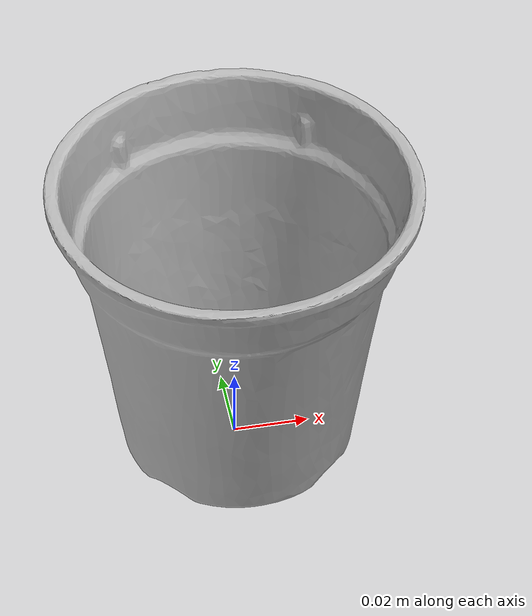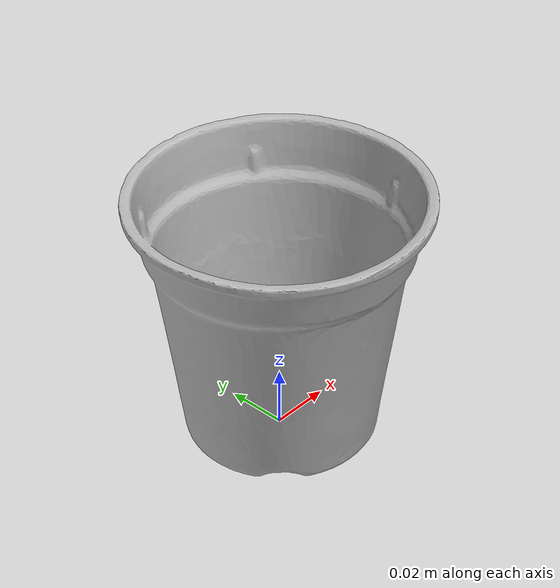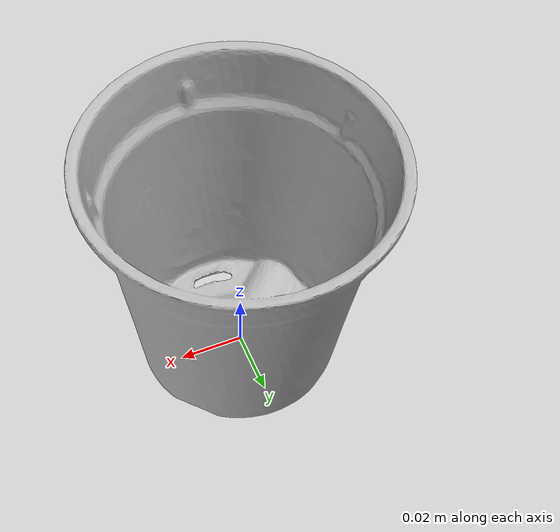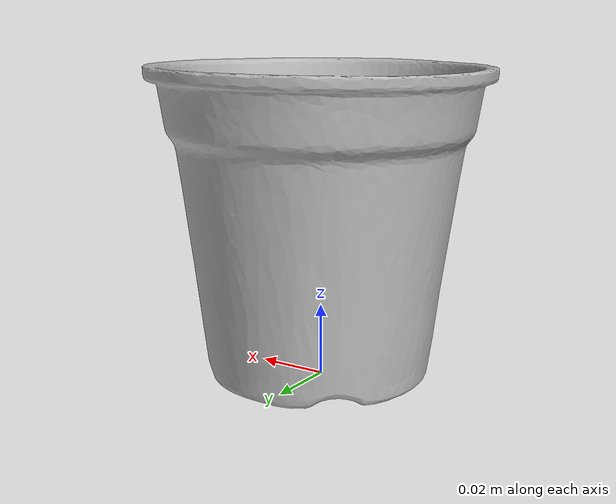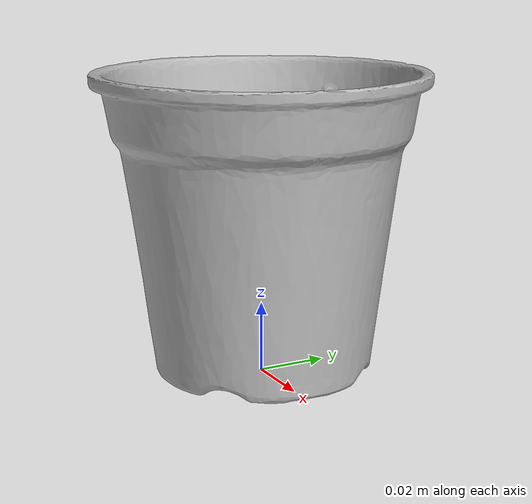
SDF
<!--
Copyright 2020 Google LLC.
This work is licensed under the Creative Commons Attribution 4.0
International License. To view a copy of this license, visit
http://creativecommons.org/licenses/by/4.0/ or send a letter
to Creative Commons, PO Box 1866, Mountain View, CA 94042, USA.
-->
<?xml version="1.0" ?>
<sdf version="1.6">
  <model name="coffee_mug">
    <static>true</static>
    <link name="link_0">
      <visual name="visual">
        <geometry>
          <mesh>
            <uri>meshes/model.obj</uri>
          </mesh>
        </geometry>
      </visual>
      <collision name="collision_0">
        <pose>0 0 0.0675 0 0 0</pose>
        <geometry>
          <cylinder><radius>0.065</radius><length>0.135</length></cylinder>
        </geometry>
      </collision>
    </link>
  </model>
</sdf>
